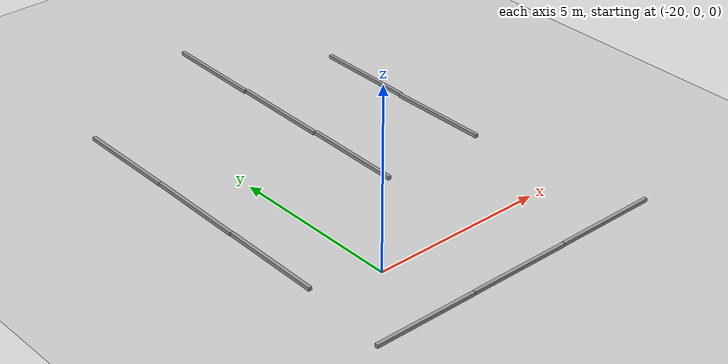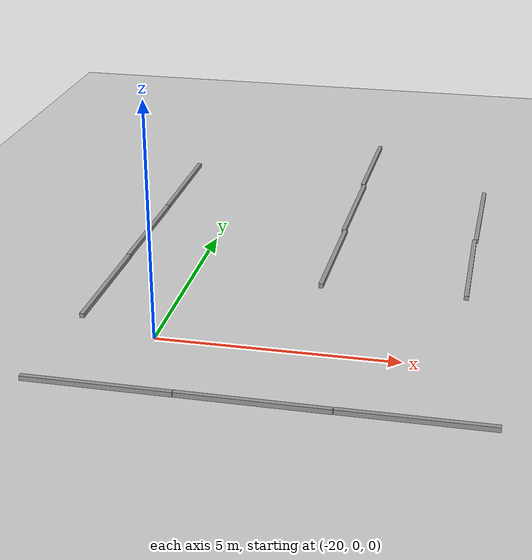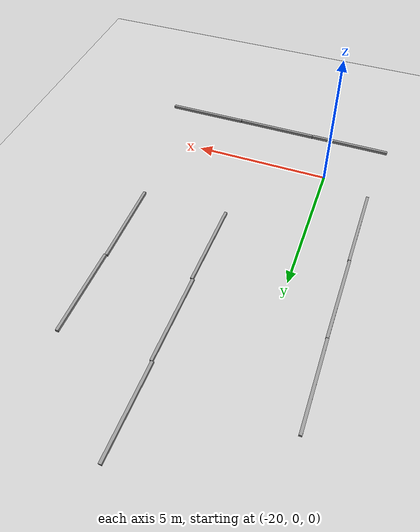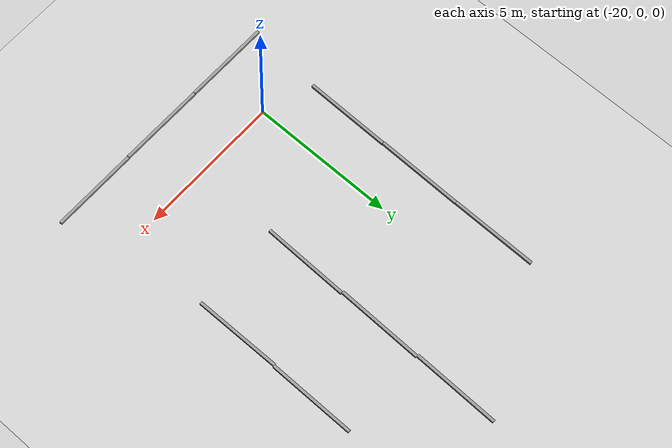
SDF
<sdf version="1.6">
 <world name="default">
  <model name="ground_plane">
   <static>1</static>
   <link name="link">
    <collision name="collision">
     <geometry><plane><normal>0 0 1</normal><size>100 100</size></plane></geometry>
     <surface>
      <contact><collide_bitmask>65535</collide_bitmask></contact>
      <friction><ode><mu>100</mu><mu2>50</mu2></ode></friction>
     </surface>
    </collision>
    <visual name="visual">
     <cast_shadows>0</cast_shadows>
     <geometry><plane><normal>0 0 1</normal><size>100 100</size></plane></geometry>
     <material>
      <script><uri>file://media/materials/scripts/gazebo.material</uri><name>Gazebo/Grey</name></script>
     </material>
    </visual>
   </link>
  </model>
  <model name="ruler_y_0_clone_0">
   <link name="link_2">
    <inertial>
     <mass>1</mass>
     <inertia>
      <ixx>0.166667</ixx>
      <ixy>0</ixy>
      <ixz>0</ixz>
      <iyy>0.166667</iyy>
      <iyz>0</iyz>
      <izz>0.166667</izz>
     </inertia>
    </inertial>
    <visual name="visual">
     <geometry><box><size>0.1 3 0.1</size></box></geometry>
     <material>
      <lighting>1</lighting>
      <script><uri>file://media/materials/scripts/gazebo.material</uri><name>Gazebo/Grey</name></script>
      <shader type="vertex"><normal_map>__default__</normal_map></shader>
      <ambient>0.3 0.3 0.3 1</ambient>
      <diffuse>0.7 0.7 0.7 1</diffuse>
      <specular>0.01 0.01 0.01 1</specular>
      <emissive>0 0 0 1</emissive>
     </material>
    </visual>
    <collision name="collision">
     <geometry><box><size>0.1 3 0.1</size></box></geometry>
     <surface>
      <friction>
       <ode><mu>1</mu><mu2>1</mu2><fdir1>0 0 0</fdir1><slip1>0</slip1><slip2>0</slip2></ode>
       <torsional>
        <coefficient>1</coefficient>
        <patch_radius>0</patch_radius>
        <surface_radius>0</surface_radius>
        <use_patch_radius>1</use_patch_radius>
        <ode><slip>0</slip></ode>
       </torsional>
      </friction>
      <bounce><restitution_coefficient>0</restitution_coefficient><threshold>1e+06</threshold></bounce>
      <contact>
       <collide_without_contact>0</collide_without_contact>
       <collide_without_contact_bitmask>1</collide_without_contact_bitmask>
       <collide_bitmask>1</collide_bitmask>
       <ode>
        <soft_cfm>0</soft_cfm>
        <soft_erp>0.2</soft_erp>
        <kp>1e+13</kp>
        <kd>1</kd>
        <max_vel>0.01</max_vel>
        <min_depth>0</min_depth>
       </ode>
       <bullet>
        <split_impulse>1</split_impulse>
        <split_impulse_penetration_threshold>-0.01</split_impulse_penetration_threshold>
        <soft_cfm>0</soft_cfm>
        <soft_erp>0.2</soft_erp>
        <kp>1e+13</kp>
        <kd>1</kd>
       </bullet>
      </contact>
     </surface>
    </collision>
   </link>
   <static>0</static>
   <plugin name="ruler_y" filename="ruler_y"/>
   <pose>-13.9847 4.43948 0.049602 -0.000266 6e-06 0.006724</pose>
  </model>
  <model name="ruler_y_0_clone_0_clone">
   <link name="link_2">
    <inertial>
     <mass>1</mass>
     <inertia>
      <ixx>0.166667</ixx>
      <ixy>0</ixy>
      <ixz>0</ixz>
      <iyy>0.166667</iyy>
      <iyz>0</iyz>
      <izz>0.166667</izz>
     </inertia>
    </inertial>
    <visual name="visual">
     <geometry><box><size>0.1 3 0.1</size></box></geometry>
     <material>
      <lighting>1</lighting>
      <script><uri>file://media/materials/scripts/gazebo.material</uri><name>Gazebo/Grey</name></script>
      <shader type="vertex"><normal_map>__default__</normal_map></shader>
      <ambient>0.3 0.3 0.3 1</ambient>
      <diffuse>0.7 0.7 0.7 1</diffuse>
      <specular>0.01 0.01 0.01 1</specular>
      <emissive>0 0 0 1</emissive>
     </material>
    </visual>
    <collision name="collision">
     <geometry><box><size>0.1 3 0.1</size></box></geometry>
     <surface>
      <friction>
       <ode><mu>1</mu><mu2>1</mu2><fdir1>0 0 0</fdir1><slip1>0</slip1><slip2>0</slip2></ode>
       <torsional>
        <coefficient>1</coefficient>
        <patch_radius>0</patch_radius>
        <surface_radius>0</surface_radius>
        <use_patch_radius>1</use_patch_radius>
        <ode><slip>0</slip></ode>
       </torsional>
      </friction>
      <bounce><restitution_coefficient>0</restitution_coefficient><threshold>1e+06</threshold></bounce>
      <contact>
       <collide_without_contact>0</collide_without_contact>
       <collide_without_contact_bitmask>1</collide_without_contact_bitmask>
       <collide_bitmask>1</collide_bitmask>
       <ode>
        <soft_cfm>0</soft_cfm>
        <soft_erp>0.2</soft_erp>
        <kp>1e+13</kp>
        <kd>1</kd>
        <max_vel>0.01</max_vel>
        <min_depth>0</min_depth>
       </ode>
       <bullet>
        <split_impulse>1</split_impulse>
        <split_impulse_penetration_threshold>-0.01</split_impulse_penetration_threshold>
        <soft_cfm>0</soft_cfm>
        <soft_erp>0.2</soft_erp>
        <kp>1e+13</kp>
        <kd>1</kd>
       </bullet>
      </contact>
     </surface>
    </collision>
   </link>
   <static>0</static>
   <plugin name="ruler_y" filename="ruler_y"/>
   <pose>-13.9528 7.44029 0.049602 -0.000266 6e-06 -0.006002</pose>
  </model>
  <model name="ruler_y_0_clone_0_clone_0">
   <link name="link_2">
    <inertial>
     <mass>1</mass>
     <inertia>
      <ixx>0.166667</ixx>
      <ixy>0</ixy>
      <ixz>0</ixz>
      <iyy>0.166667</iyy>
      <iyz>0</iyz>
      <izz>0.166667</izz>
     </inertia>
    </inertial>
    <visual name="visual">
     <geometry><box><size>0.1 3 0.1</size></box></geometry>
     <material>
      <lighting>1</lighting>
      <script><uri>file://media/materials/scripts/gazebo.material</uri><name>Gazebo/Grey</name></script>
      <shader type="vertex"><normal_map>__default__</normal_map></shader>
      <ambient>0.3 0.3 0.3 1</ambient>
      <diffuse>0.7 0.7 0.7 1</diffuse>
      <specular>0.01 0.01 0.01 1</specular>
      <emissive>0 0 0 1</emissive>
     </material>
    </visual>
    <collision name="collision">
     <geometry><box><size>0.1 3 0.1</size></box></geometry>
     <surface>
      <friction>
       <ode><mu>1</mu><mu2>1</mu2><fdir1>0 0 0</fdir1><slip1>0</slip1><slip2>0</slip2></ode>
       <torsional>
        <coefficient>1</coefficient>
        <patch_radius>0</patch_radius>
        <surface_radius>0</surface_radius>
        <use_patch_radius>1</use_patch_radius>
        <ode><slip>0</slip></ode>
       </torsional>
      </friction>
      <bounce><restitution_coefficient>0</restitution_coefficient><threshold>1e+06</threshold></bounce>
      <contact>
       <collide_without_contact>0</collide_without_contact>
       <collide_without_contact_bitmask>1</collide_without_contact_bitmask>
       <collide_bitmask>1</collide_bitmask>
       <ode>
        <soft_cfm>0</soft_cfm>
        <soft_erp>0.2</soft_erp>
        <kp>1e+13</kp>
        <kd>1</kd>
        <max_vel>0.01</max_vel>
        <min_depth>0</min_depth>
       </ode>
       <bullet>
        <split_impulse>1</split_impulse>
        <split_impulse_penetration_threshold>-0.01</split_impulse_penetration_threshold>
        <soft_cfm>0</soft_cfm>
        <soft_erp>0.2</soft_erp>
        <kp>1e+13</kp>
        <kd>1</kd>
       </bullet>
      </contact>
     </surface>
    </collision>
   </link>
   <static>0</static>
   <plugin name="ruler_y" filename="ruler_y"/>
   <pose>-17.0888 4.40079 0.049602 0.000266 6e-06 -0.021291</pose>
  </model>
  <model name="ruler_y_0_clone_0_clone_0_clone">
   <link name="link_2">
    <inertial>
     <mass>1</mass>
     <inertia>
      <ixx>0.166667</ixx>
      <ixy>0</ixy>
      <ixz>0</ixz>
      <iyy>0.166667</iyy>
      <iyz>0</iyz>
      <izz>0.166667</izz>
     </inertia>
    </inertial>
    <visual name="visual">
     <geometry><box><size>0.1 3 0.1</size></box></geometry>
     <material>
      <lighting>1</lighting>
      <script><uri>file://media/materials/scripts/gazebo.material</uri><name>Gazebo/Grey</name></script>
      <shader type="vertex"><normal_map>__default__</normal_map></shader>
      <ambient>0.3 0.3 0.3 1</ambient>
      <diffuse>0.7 0.7 0.7 1</diffuse>
      <specular>0.01 0.01 0.01 1</specular>
      <emissive>0 0 0 1</emissive>
     </material>
    </visual>
    <collision name="collision">
     <geometry><box><size>0.1 3 0.1</size></box></geometry>
     <surface>
      <friction>
       <ode><mu>1</mu><mu2>1</mu2><fdir1>0 0 0</fdir1><slip1>0</slip1><slip2>0</slip2></ode>
       <torsional>
        <coefficient>1</coefficient>
        <patch_radius>0</patch_radius>
        <surface_radius>0</surface_radius>
        <use_patch_radius>1</use_patch_radius>
        <ode><slip>0</slip></ode>
       </torsional>
      </friction>
      <bounce><restitution_coefficient>0</restitution_coefficient><threshold>1e+06</threshold></bounce>
      <contact>
       <collide_without_contact>0</collide_without_contact>
       <collide_without_contact_bitmask>1</collide_without_contact_bitmask>
       <collide_bitmask>1</collide_bitmask>
       <ode>
        <soft_cfm>0</soft_cfm>
        <soft_erp>0.2</soft_erp>
        <kp>1e+13</kp>
        <kd>1</kd>
        <max_vel>0.01</max_vel>
        <min_depth>0</min_depth>
       </ode>
       <bullet>
        <split_impulse>1</split_impulse>
        <split_impulse_penetration_threshold>-0.01</split_impulse_penetration_threshold>
        <soft_cfm>0</soft_cfm>
        <soft_erp>0.2</soft_erp>
        <kp>1e+13</kp>
        <kd>1</kd>
       </bullet>
      </contact>
     </surface>
    </collision>
   </link>
   <static>0</static>
   <plugin name="ruler_y" filename="ruler_y"/>
   <pose>-17.0667 7.40489 0.049602 -0.000266 -6e-06 -0.021291</pose>
  </model>
  <model name="ruler_y_0_clone_0_clone_0_clone_clone">
   <link name="link_2">
    <inertial>
     <mass>1</mass>
     <inertia>
      <ixx>0.166667</ixx>
      <ixy>0</ixy>
      <ixz>0</ixz>
      <iyy>0.166667</iyy>
      <iyz>0</iyz>
      <izz>0.166667</izz>
     </inertia>
    </inertial>
    <visual name="visual">
     <geometry><box><size>0.1 3 0.1</size></box></geometry>
     <material>
      <lighting>1</lighting>
      <script><uri>file://media/materials/scripts/gazebo.material</uri><name>Gazebo/Grey</name></script>
      <shader type="vertex"><normal_map>__default__</normal_map></shader>
      <ambient>0.3 0.3 0.3 1</ambient>
      <diffuse>0.7 0.7 0.7 1</diffuse>
      <specular>0.01 0.01 0.01 1</specular>
      <emissive>0 0 0 1</emissive>
     </material>
    </visual>
    <collision name="collision">
     <geometry><box><size>0.1 3 0.1</size></box></geometry>
     <surface>
      <friction>
       <ode><mu>1</mu><mu2>1</mu2><fdir1>0 0 0</fdir1><slip1>0</slip1><slip2>0</slip2></ode>
       <torsional>
        <coefficient>1</coefficient>
        <patch_radius>0</patch_radius>
        <surface_radius>0</surface_radius>
        <use_patch_radius>1</use_patch_radius>
        <ode><slip>0</slip></ode>
       </torsional>
      </friction>
      <bounce><restitution_coefficient>0</restitution_coefficient><threshold>1e+06</threshold></bounce>
      <contact>
       <collide_without_contact>0</collide_without_contact>
       <collide_without_contact_bitmask>1</collide_without_contact_bitmask>
       <collide_bitmask>1</collide_bitmask>
       <ode>
        <soft_cfm>0</soft_cfm>
        <soft_erp>0.2</soft_erp>
        <kp>1e+13</kp>
        <kd>1</kd>
        <max_vel>0.01</max_vel>
        <min_depth>0</min_depth>
       </ode>
       <bullet>
        <split_impulse>1</split_impulse>
        <split_impulse_penetration_threshold>-0.01</split_impulse_penetration_threshold>
        <soft_cfm>0</soft_cfm>
        <soft_erp>0.2</soft_erp>
        <kp>1e+13</kp>
        <kd>1</kd>
       </bullet>
      </contact>
     </surface>
    </collision>
   </link>
   <static>0</static>
   <plugin name="ruler_y" filename="ruler_y"/>
   <pose>-17.0442 10.4067 0.049602 0.000266 6e-06 -0.021283</pose>
  </model>
  <model name="ruler_y_0_clone_0_clone_clone_clone_clone_0_clone_clone_clone_clone_clone_clone_clone_clone_clone">
   <link name="link_2">
    <inertial>
     <mass>1</mass>
     <inertia>
      <ixx>0.166667</ixx>
      <ixy>0</ixy>
      <ixz>0</ixz>
      <iyy>0.166667</iyy>
      <iyz>0</iyz>
      <izz>0.166667</izz>
     </inertia>
    </inertial>
    <visual name="visual">
     <geometry><box><size>0.1 3 0.1</size></box></geometry>
     <material>
      <lighting>1</lighting>
      <script><uri>file://media/materials/scripts/gazebo.material</uri><name>Gazebo/Grey</name></script>
      <shader type="vertex"><normal_map>__default__</normal_map></shader>
      <ambient>0.3 0.3 0.3 1</ambient>
      <diffuse>0.7 0.7 0.7 1</diffuse>
      <specular>0.01 0.01 0.01 1</specular>
      <emissive>0 0 0 1</emissive>
     </material>
    </visual>
    <collision name="collision">
     <geometry><box><size>0.1 3 0.1</size></box></geometry>
     <surface>
      <friction>
       <ode><mu>1</mu><mu2>1</mu2><fdir1>0 0 0</fdir1><slip1>0</slip1><slip2>0</slip2></ode>
       <torsional>
        <coefficient>1</coefficient>
        <patch_radius>0</patch_radius>
        <surface_radius>0</surface_radius>
        <use_patch_radius>1</use_patch_radius>
        <ode><slip>0</slip></ode>
       </torsional>
      </friction>
      <bounce><restitution_coefficient>0</restitution_coefficient><threshold>1e+06</threshold></bounce>
      <contact>
       <collide_without_contact>0</collide_without_contact>
       <collide_without_contact_bitmask>1</collide_without_contact_bitmask>
       <collide_bitmask>1</collide_bitmask>
       <ode>
        <soft_cfm>0</soft_cfm>
        <soft_erp>0.2</soft_erp>
        <kp>1e+13</kp>
        <kd>1</kd>
        <max_vel>0.01</max_vel>
        <min_depth>0</min_depth>
       </ode>
       <bullet>
        <split_impulse>1</split_impulse>
        <split_impulse_penetration_threshold>-0.01</split_impulse_penetration_threshold>
        <soft_cfm>0</soft_cfm>
        <soft_erp>0.2</soft_erp>
        <kp>1e+13</kp>
        <kd>1</kd>
       </bullet>
      </contact>
     </surface>
    </collision>
   </link>
   <static>0</static>
   <plugin name="ruler_y" filename="ruler_y"/>
   <pose>-21.6588 8.05439 0.049602 0.000266 -6e-06 -0.006119</pose>
  </model>
  <model name="ruler_y_0_clone_0_clone_clone_clone_clone_0_clone_clone_clone_clone_clone_clone_clone_clone_clone_0">
   <link name="link_2">
    <inertial>
     <mass>1</mass>
     <inertia>
      <ixx>0.166667</ixx>
      <ixy>0</ixy>
      <ixz>0</ixz>
      <iyy>0.166667</iyy>
      <iyz>0</iyz>
      <izz>0.166667</izz>
     </inertia>
    </inertial>
    <visual name="visual">
     <geometry><box><size>0.1 3 0.1</size></box></geometry>
     <material>
      <lighting>1</lighting>
      <script><uri>file://media/materials/scripts/gazebo.material</uri><name>Gazebo/Grey</name></script>
      <shader type="vertex"><normal_map>__default__</normal_map></shader>
      <ambient>0.3 0.3 0.3 1</ambient>
      <diffuse>0.7 0.7 0.7 1</diffuse>
      <specular>0.01 0.01 0.01 1</specular>
      <emissive>0 0 0 1</emissive>
     </material>
    </visual>
    <collision name="collision">
     <geometry><box><size>0.1 3 0.1</size></box></geometry>
     <surface>
      <friction>
       <ode><mu>1</mu><mu2>1</mu2><fdir1>0 0 0</fdir1><slip1>0</slip1><slip2>0</slip2></ode>
       <torsional>
        <coefficient>1</coefficient>
        <patch_radius>0</patch_radius>
        <surface_radius>0</surface_radius>
        <use_patch_radius>1</use_patch_radius>
        <ode><slip>0</slip></ode>
       </torsional>
      </friction>
      <bounce><restitution_coefficient>0</restitution_coefficient><threshold>1e+06</threshold></bounce>
      <contact>
       <collide_without_contact>0</collide_without_contact>
       <collide_without_contact_bitmask>1</collide_without_contact_bitmask>
       <collide_bitmask>1</collide_bitmask>
       <ode>
        <soft_cfm>0</soft_cfm>
        <soft_erp>0.2</soft_erp>
        <kp>1e+13</kp>
        <kd>1</kd>
        <max_vel>0.01</max_vel>
        <min_depth>0</min_depth>
       </ode>
       <bullet>
        <split_impulse>1</split_impulse>
        <split_impulse_penetration_threshold>-0.01</split_impulse_penetration_threshold>
        <soft_cfm>0</soft_cfm>
        <soft_erp>0.2</soft_erp>
        <kp>1e+13</kp>
        <kd>1</kd>
       </bullet>
      </contact>
     </surface>
    </collision>
   </link>
   <static>0</static>
   <plugin name="ruler_y" filename="ruler_y"/>
   <pose>-21.683 5.04961 0.049602 0.000266 6e-06 -0.014673</pose>
  </model>
  <model name="ruler_y_0_clone_0_clone_clone_clone_clone_0_clone_clone_clone_clone_clone_clone_clone_clone_clone_0_clone">
   <link name="link_2">
    <inertial>
     <mass>1</mass>
     <inertia>
      <ixx>0.166667</ixx>
      <ixy>0</ixy>
      <ixz>0</ixz>
      <iyy>0.166667</iyy>
      <iyz>0</iyz>
      <izz>0.166667</izz>
     </inertia>
    </inertial>
    <visual name="visual">
     <geometry><box><size>0.1 3 0.1</size></box></geometry>
     <material>
      <lighting>1</lighting>
      <script><uri>file://media/materials/scripts/gazebo.material</uri><name>Gazebo/Grey</name></script>
      <shader type="vertex"><normal_map>__default__</normal_map></shader>
      <ambient>0.3 0.3 0.3 1</ambient>
      <diffuse>0.7 0.7 0.7 1</diffuse>
      <specular>0.01 0.01 0.01 1</specular>
      <emissive>0 0 0 1</emissive>
     </material>
    </visual>
    <collision name="collision">
     <geometry><box><size>0.1 3 0.1</size></box></geometry>
     <surface>
      <friction>
       <ode><mu>1</mu><mu2>1</mu2><fdir1>0 0 0</fdir1><slip1>0</slip1><slip2>0</slip2></ode>
       <torsional>
        <coefficient>1</coefficient>
        <patch_radius>0</patch_radius>
        <surface_radius>0</surface_radius>
        <use_patch_radius>1</use_patch_radius>
        <ode><slip>0</slip></ode>
       </torsional>
      </friction>
      <bounce><restitution_coefficient>0</restitution_coefficient><threshold>1e+06</threshold></bounce>
      <contact>
       <collide_without_contact>0</collide_without_contact>
       <collide_without_contact_bitmask>1</collide_without_contact_bitmask>
       <collide_bitmask>1</collide_bitmask>
       <ode>
        <soft_cfm>0</soft_cfm>
        <soft_erp>0.2</soft_erp>
        <kp>1e+13</kp>
        <kd>1</kd>
        <max_vel>0.01</max_vel>
        <min_depth>0</min_depth>
       </ode>
       <bullet>
        <split_impulse>1</split_impulse>
        <split_impulse_penetration_threshold>-0.01</split_impulse_penetration_threshold>
        <soft_cfm>0</soft_cfm>
        <soft_erp>0.2</soft_erp>
        <kp>1e+13</kp>
        <kd>1</kd>
       </bullet>
      </contact>
     </surface>
    </collision>
   </link>
   <static>0</static>
   <plugin name="ruler_y" filename="ruler_y"/>
   <pose>-21.7132 2.04477 0.049602 -0.000266 -6e-06 -0.014659</pose>
  </model>
  <model name="ruler_clone_clone_0_clone_clone_clone">
   <link name="link_1">
    <inertial>
     <mass>1</mass>
     <inertia>
      <ixx>0.166667</ixx>
      <ixy>0</ixy>
      <ixz>0</ixz>
      <iyy>0.166667</iyy>
      <iyz>0</iyz>
      <izz>0.166667</izz>
     </inertia>
    </inertial>
    <visual name="visual">
     <geometry><box><size>3 0.1 0.1</size></box></geometry>
     <material>
      <lighting>1</lighting>
      <script><uri>file://media/materials/scripts/gazebo.material</uri><name>Gazebo/Grey</name></script>
      <shader type="vertex"><normal_map>__default__</normal_map></shader>
      <ambient>0.3 0.3 0.3 1</ambient>
      <diffuse>0.7 0.7 0.7 1</diffuse>
      <specular>0.01 0.01 0.01 1</specular>
      <emissive>0 0 0 1</emissive>
     </material>
    </visual>
    <collision name="collision">
     <geometry><box><size>3 0.1 0.1</size></box></geometry>
     <surface>
      <friction>
       <ode><mu>1</mu><mu2>1</mu2><fdir1>0 0 0</fdir1><slip1>0</slip1><slip2>0</slip2></ode>
       <torsional>
        <coefficient>1</coefficient>
        <patch_radius>0</patch_radius>
        <surface_radius>0</surface_radius>
        <use_patch_radius>1</use_patch_radius>
        <ode><slip>0</slip></ode>
       </torsional>
      </friction>
      <bounce><restitution_coefficient>0</restitution_coefficient><threshold>1e+06</threshold></bounce>
      <contact>
       <collide_without_contact>0</collide_without_contact>
       <collide_without_contact_bitmask>1</collide_without_contact_bitmask>
       <collide_bitmask>1</collide_bitmask>
       <ode>
        <soft_cfm>0</soft_cfm>
        <soft_erp>0.2</soft_erp>
        <kp>1e+13</kp>
        <kd>1</kd>
        <max_vel>0.01</max_vel>
        <min_depth>0</min_depth>
       </ode>
       <bullet>
        <split_impulse>1</split_impulse>
        <split_impulse_penetration_threshold>-0.01</split_impulse_penetration_threshold>
        <soft_cfm>0</soft_cfm>
        <soft_erp>0.2</soft_erp>
        <kp>1e+13</kp>
        <kd>1</kd>
       </bullet>
      </contact>
     </surface>
    </collision>
   </link>
   <static>0</static>
   <pose>-14.5026 -2.05415 0.049602 6e-06 -0.000266 2.1e-05</pose>
  </model>
  <model name="ruler_clone_clone_0_clone_clone_clone_clone">
   <link name="link_1">
    <inertial>
     <mass>1</mass>
     <inertia>
      <ixx>0.166667</ixx>
      <ixy>0</ixy>
      <ixz>0</ixz>
      <iyy>0.166667</iyy>
      <iyz>0</iyz>
      <izz>0.166667</izz>
     </inertia>
    </inertial>
    <visual name="visual">
     <geometry><box><size>3 0.1 0.1</size></box></geometry>
     <material>
      <lighting>1</lighting>
      <script><uri>file://media/materials/scripts/gazebo.material</uri><name>Gazebo/Grey</name></script>
      <shader type="vertex"><normal_map>__default__</normal_map></shader>
      <ambient>0.3 0.3 0.3 1</ambient>
      <diffuse>0.7 0.7 0.7 1</diffuse>
      <specular>0.01 0.01 0.01 1</specular>
      <emissive>0 0 0 1</emissive>
     </material>
    </visual>
    <collision name="collision">
     <geometry><box><size>3 0.1 0.1</size></box></geometry>
     <surface>
      <friction>
       <ode><mu>1</mu><mu2>1</mu2><fdir1>0 0 0</fdir1><slip1>0</slip1><slip2>0</slip2></ode>
       <torsional>
        <coefficient>1</coefficient>
        <patch_radius>0</patch_radius>
        <surface_radius>0</surface_radius>
        <use_patch_radius>1</use_patch_radius>
        <ode><slip>0</slip></ode>
       </torsional>
      </friction>
      <bounce><restitution_coefficient>0</restitution_coefficient><threshold>1e+06</threshold></bounce>
      <contact>
       <collide_without_contact>0</collide_without_contact>
       <collide_without_contact_bitmask>1</collide_without_contact_bitmask>
       <collide_bitmask>1</collide_bitmask>
       <ode>
        <soft_cfm>0</soft_cfm>
        <soft_erp>0.2</soft_erp>
        <kp>1e+13</kp>
        <kd>1</kd>
        <max_vel>0.01</max_vel>
        <min_depth>0</min_depth>
       </ode>
       <bullet>
        <split_impulse>1</split_impulse>
        <split_impulse_penetration_threshold>-0.01</split_impulse_penetration_threshold>
        <soft_cfm>0</soft_cfm>
        <soft_erp>0.2</soft_erp>
        <kp>1e+13</kp>
        <kd>1</kd>
       </bullet>
      </contact>
     </surface>
    </collision>
   </link>
   <static>0</static>
   <pose>-17.513 -2.05898 0.049602 6e-06 -0.000266 -0.003279</pose>
  </model>
  <model name="ruler_clone_clone_0_clone_clone_clone_clone_clone">
   <link name="link_1">
    <inertial>
     <mass>1</mass>
     <inertia>
      <ixx>0.166667</ixx>
      <ixy>0</ixy>
      <ixz>0</ixz>
      <iyy>0.166667</iyy>
      <iyz>0</iyz>
      <izz>0.166667</izz>
     </inertia>
    </inertial>
    <visual name="visual">
     <geometry><box><size>3 0.1 0.1</size></box></geometry>
     <material>
      <lighting>1</lighting>
      <script><uri>file://media/materials/scripts/gazebo.material</uri><name>Gazebo/Grey</name></script>
      <shader type="vertex"><normal_map>__default__</normal_map></shader>
      <ambient>0.3 0.3 0.3 1</ambient>
      <diffuse>0.7 0.7 0.7 1</diffuse>
      <specular>0.01 0.01 0.01 1</specular>
      <emissive>0 0 0 1</emissive>
     </material>
    </visual>
    <collision name="collision">
     <geometry><box><size>3 0.1 0.1</size></box></geometry>
     <surface>
      <friction>
       <ode><mu>1</mu><mu2>1</mu2><fdir1>0 0 0</fdir1><slip1>0</slip1><slip2>0</slip2></ode>
       <torsional>
        <coefficient>1</coefficient>
        <patch_radius>0</patch_radius>
        <surface_radius>0</surface_radius>
        <use_patch_radius>1</use_patch_radius>
        <ode><slip>0</slip></ode>
       </torsional>
      </friction>
      <bounce><restitution_coefficient>0</restitution_coefficient><threshold>1e+06</threshold></bounce>
      <contact>
       <collide_without_contact>0</collide_without_contact>
       <collide_without_contact_bitmask>1</collide_without_contact_bitmask>
       <collide_bitmask>1</collide_bitmask>
       <ode>
        <soft_cfm>0</soft_cfm>
        <soft_erp>0.2</soft_erp>
        <kp>1e+13</kp>
        <kd>1</kd>
        <max_vel>0.01</max_vel>
        <min_depth>0</min_depth>
       </ode>
       <bullet>
        <split_impulse>1</split_impulse>
        <split_impulse_penetration_threshold>-0.01</split_impulse_penetration_threshold>
        <soft_cfm>0</soft_cfm>
        <soft_erp>0.2</soft_erp>
        <kp>1e+13</kp>
        <kd>1</kd>
       </bullet>
      </contact>
     </surface>
    </collision>
   </link>
   <static>0</static>
   <pose>-20.5196 -2.05638 0.049602 6e-06 -0.000266 -0.003279</pose>
  </model>
 </world>
</sdf>
